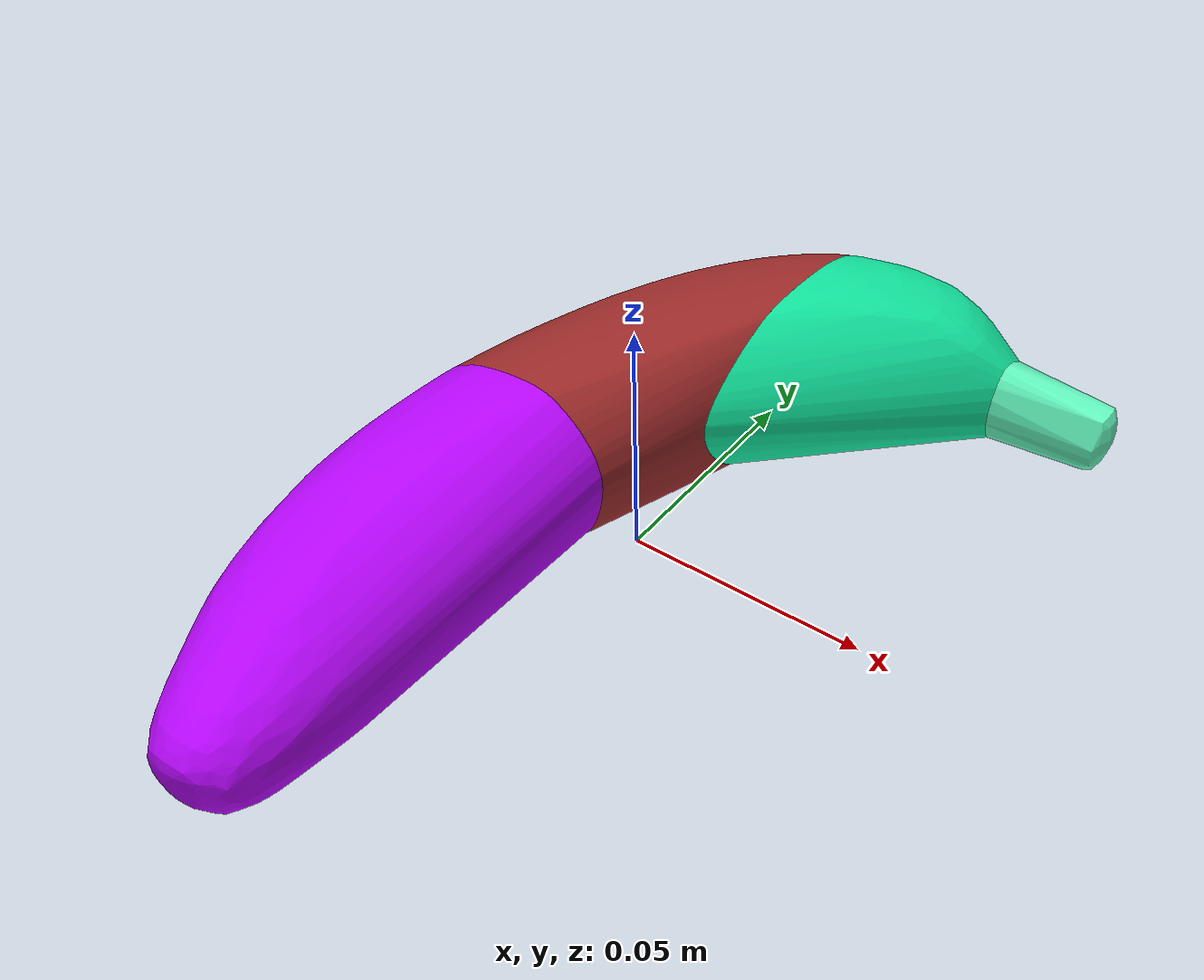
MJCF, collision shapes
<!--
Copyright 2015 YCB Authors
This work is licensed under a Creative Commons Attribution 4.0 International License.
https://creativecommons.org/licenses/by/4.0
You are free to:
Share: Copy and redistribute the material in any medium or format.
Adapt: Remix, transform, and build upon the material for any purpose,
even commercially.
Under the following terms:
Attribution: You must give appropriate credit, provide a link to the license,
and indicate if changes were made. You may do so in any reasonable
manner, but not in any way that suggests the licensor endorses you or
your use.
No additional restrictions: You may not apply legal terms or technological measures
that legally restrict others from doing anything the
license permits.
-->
<mujoco model="011_banana">
  <compiler meshdir="meshes" texturedir="materials"/>

  <asset>
    <texture type="2d" name="texture" file="texture_map.png"/>
    <material name="texture" texture="texture"/>

    <mesh file="textured.obj"/>
    <mesh file="coacd_part_000.obj"/>
    <mesh file="coacd_part_001.obj"/>
    <mesh file="coacd_part_002.obj"/>
    <mesh file="coacd_part_003.obj"/>
  </asset>

  <default>
    <default class="011_banana">
      <default class="visual_011_banana">
        <geom type="mesh" group="2" density="200" contype="0" conaffinity="0" material="texture"/>
      </default>
      <default class="collision_011_banana">
        <geom type="mesh" group="3" mass="0" density="0" solref=".004 1" friction="1.0 0.01 0.01" condim="6"/>
      </default>
    </default>
  </default>

  <worldbody>
    <body childclass="011_banana">
      <freejoint/>
      <geom class="visual_011_banana" mesh="textured"/>
      <geom class="collision_011_banana" mesh="coacd_part_000" rgba="0.375 0.95 0.73 1"/>
      <geom class="collision_011_banana" mesh="coacd_part_001" rgba="0.599 0.16 0.16 1"/>
      <geom class="collision_011_banana" mesh="coacd_part_002" rgba="0.058 0.87 0.60 1"/>
      <geom class="collision_011_banana" mesh="coacd_part_003" rgba="0.708 0.02 0.97 1"/>
    </body>
  </worldbody>
</mujoco>
